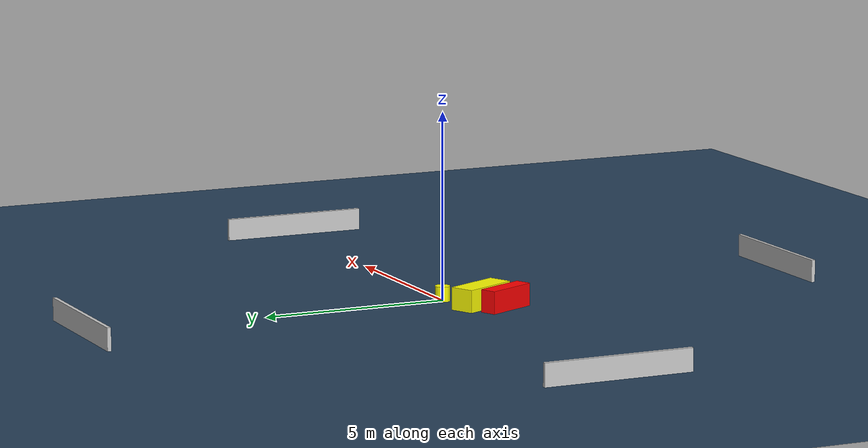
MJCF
<?xml version="1.0" ?>
<mujoco model="generated_environment">
  <option timestep="0.01" integrator="RK4" cone="elliptic"/>
  <default>
    <geom density="1"/>
  </default>
  <asset>
    <texture builtin="gradient" height="3072" name="skybox" rgb1="0.3 0.5 0.7" rgb2="0 0 0" type="skybox" width="512"/>
    <texture builtin="checker" height="300" name="groundplane" rgb1="0.2 0.3 0.4" rgb2="0.1 0.2 0.3" type="2d" width="300"/>
    <material name="groundplane" reflectance="0.2" texrepeat="5 5" texture="groundplane"/>
  </asset>
  <worldbody>
    <light dir="0 0 -1" directional="true" pos="0 0 1.5"/>
    <geom condim="3" friction="0.5 0.005 0.001" material="groundplane" name="floor" pos="0 0 0" size="0 0 0.05" type="plane"/>
    <body name="walls">
      <geom name="wall_1" condim="4" pos="-10.0 0.0 0.3" rgba="0.800000011920929 0.800000011920929 0.800000011920929 1.0" size="0.05 2.0 0.3" type="box"/>
      <geom name="wall_2" condim="4" pos="10.0 0.0 0.3" rgba="0.800000011920929 0.800000011920929 0.800000011920929 1.0" size="0.05 2.0 0.3" type="box"/>
      <geom name="wall_3" condim="4" pos="0.0 -10.0 0.3" rgba="0.800000011920929 0.800000011920929 0.800000011920929 1.0" size="2.0 0.05 0.3" type="box"/>
      <geom name="wall_4" condim="4" pos="0.0 10.0 0.3" rgba="0.800000011920929 0.800000011920929 0.800000011920929 1.0" size="2.0 0.05 0.3" type="box"/>
    </body>
    <body name="robot">
      <joint name="joint_x" type="slide" pos="0 0 0" axis="1 0 0"/>
      <joint name="joint_y" type="slide" pos="0 0 0" axis="0 1 0"/>
      <geom name="robot" type="cylinder" pos="0.0 0.0 0.2" size="0.2 0.2 0.0" mass="5.0" friction="1.0 0.005 0.0001" condim="4" rgba="1.0 1.0 0.0 1.0"/>
    </body>
    <body name="obstacle_1_movable">
      <geom name="obstacle_1_movable" condim="4" pos="-1.0922663104210508 -0.5940750183921008 0.3" euler="0 0 115.12263839997584" friction="0.0 0.005 0.001" rgba="1.0 1.0 0.0 1.0" size="0.7883078180563619 0.3267382217934426 0.3" type="box" mass="0.1"/>
      <joint type="free"/>
    </body>
    <body name="obstacle_2_static">
      <geom name="obstacle_2_static" condim="4" pos="-1.6065023246762475 -1.055687296748701 0.3" euler="0 0 295.13283214925957" friction="0.0 0.005 0.001" rgba="1.0 0.0 0.0 1.0" size="0.728468506264099 0.21802414698682648 0.3" type="box"/>
    </body>
  </worldbody>
  <actuator>
    <motor name="actuator_x" joint="joint_x" gear="1" ctrlrange="-1 1"/>
    <motor name="actuator_y" joint="joint_y" gear="1" ctrlrange="-1 1"/>
  </actuator>
</mujoco>
